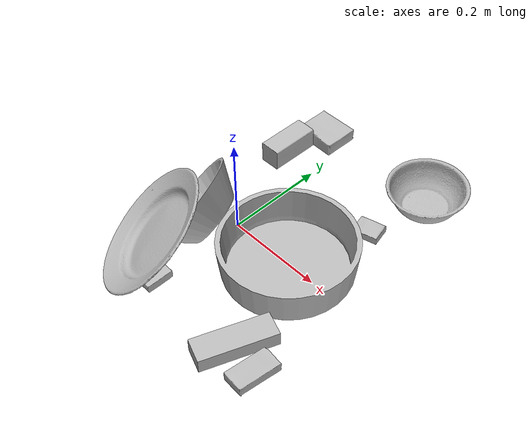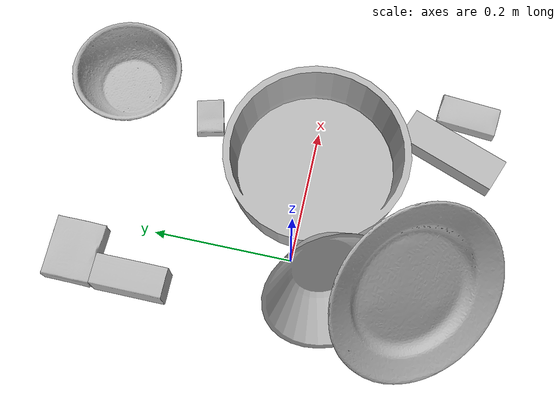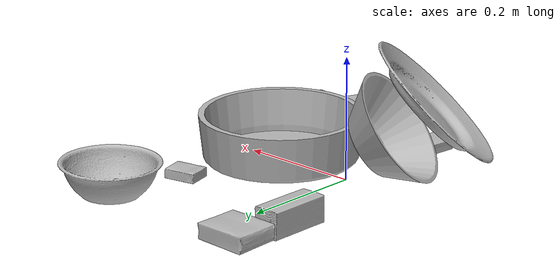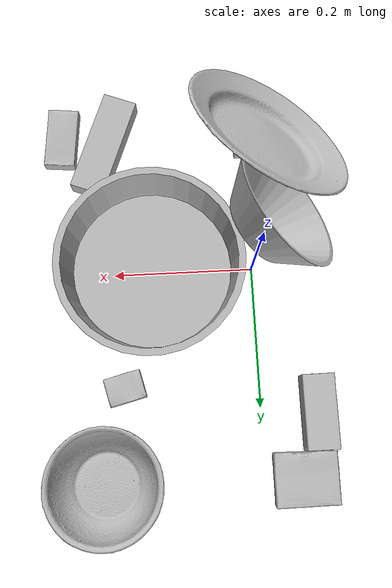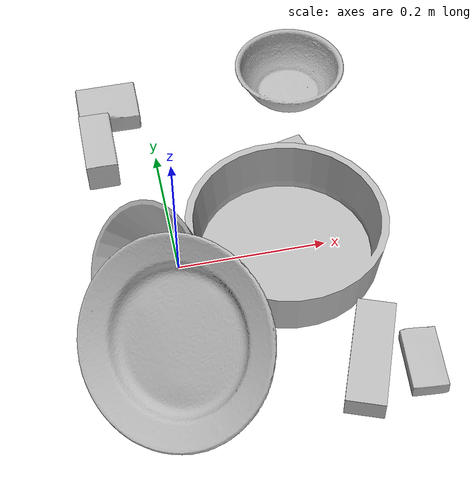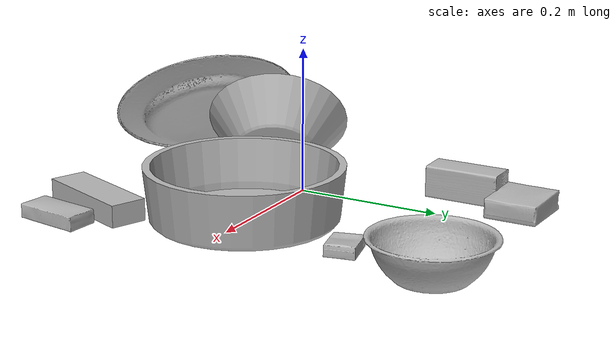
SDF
<sdf version="1.4">
  <world name="default">
    <light name="light1" type="point">
      <pose>0 0 1 0 0 0</pose>
      <diffuse>3 3 3 1</diffuse>
      <specular>3 3 3 1</specular>
    </light>
    <light name="light2" type="point">
      <pose>0 0.5 2 0 0 0</pose>
      <diffuse>1 1 1 1</diffuse>
      <specular>1 1 1 1</specular>
    </light>
    <light name="light3" type="point">
      <pose>0 0.5 2 0 0 0</pose>
      <diffuse>3 3 3 1</diffuse>
      <specular>3 3 3 1</specular>
    </light>
    <scene>
      <ambient>0.7 0.7 0.7</ambient>
    </scene>
    <model name="box1">
      <link name="link_box1">
        <collision name="default">
          <geometry>
            <mesh>
              <uri>model://jenga/collision_meshes/collision.obj</uri>
              <scale>1.0 1.0 1.0</scale>
            </mesh>
          </geometry>
          <surface>
            <friction>
              <ode>
                <mu>0.5</mu>
                <mu2>0.5</mu2>
              </ode>
            </friction>
          <contact>
        <ode>
            <max_vel>0</max_vel>
            <min_depth>0.0001</min_depth>
            <kp>1e8</kp>
        </ode>
    </contact></surface>
        </collision>
        <visual name="default">
          <geometry>
            <mesh>
              <uri>model://jenga/visual_meshes/visual.dae</uri>
              <scale>1.0 1.0 1.0</scale>
            </mesh>
          </geometry>
        </visual>
        <inertial>
          <mass>0.22956150770187378</mass>
          <pose>-2.502855807051674e-07 -0.00010250010382151231 -4.0923401684267446e-05 0.0 -7.34215461761844e-07 0.0</pose>
          <inertia>
            <ixx>6.3525236e-05</ixx>
            <iyy>0.00043044525</iyy>
            <izz>0.0004595369</izz>
            <ixy>0</ixy>
            <ixz>0</ixz>
            <iyz>0</iyz>
          </inertia>
        </inertial>
      </link>
      <pose>0.20788882672786713 -0.19574101269245148 0.014999995008111 -8.26164790568732e-09 9.737600849502162e-09 -1.9372807256814977</pose>
    </model>
    <model name="box11">
      <link name="link_box11">
        <collision name="default">
          <geometry>
            <mesh>
              <uri>model://gelatin_box/collision_meshes/collision.obj</uri>
              <scale>1.0 1.0 1.0</scale>
            </mesh>
          </geometry>
          <surface>
            <friction>
              <ode>
                <mu>0.5</mu>
                <mu2>0.5</mu2>
              </ode>
            </friction>
          <contact>
        <ode>
            <max_vel>0</max_vel>
            <min_depth>0.0001</min_depth>
            <kp>1e8</kp>
        </ode>
    </contact></surface>
        </collision>
        <visual name="default">
          <geometry>
            <mesh>
              <uri>model://gelatin_box/visual_meshes/visual.dae</uri>
              <scale>1.0 1.0 1.0</scale>
            </mesh>
          </geometry>
        </visual>
        <inertial>
          <mass>0.23979201912879944</mass>
          <pose>0.00043196187471039593 0.00011156872642459348 -0.0003640321083366871 -0.0010503717361155602 -0.00475581776093882 0.016440559470502904</pose>
          <inertia>
            <ixx>0.00016927361</ixx>
            <iyy>0.000120911245</iyy>
            <izz>0.00025767216</izz>
            <ixy>0</ixy>
            <ixz>0</ixz>
            <iyz>0</iyz>
          </inertia>
        </inertial>
      </link>
      <pose>-0.05483310669660568 0.299321711063385 0.015168314799666405 0.005597137635525349 -0.0073041506323945436 -1.583892960916431</pose>
    </model>
    <model name="box2">
      <link name="link_box2">
        <collision name="default">
          <geometry>
            <mesh>
              <uri>model://wood_block/collision_meshes/collision.obj</uri>
              <scale>0.5 0.5 0.5</scale>
            </mesh>
          </geometry>
          <surface>
            <friction>
              <ode>
                <mu>0.5</mu>
                <mu2>0.5</mu2>
              </ode>
            </friction>
          <contact>
        <ode>
            <max_vel>0</max_vel>
            <min_depth>0.0001</min_depth>
            <kp>1e8</kp>
        </ode>
    </contact></surface>
        </collision>
        <visual name="default">
          <geometry>
            <mesh>
              <uri>model://wood_block/visual_meshes/visual.dae</uri>
              <scale>0.5 0.5 0.5</scale>
            </mesh>
          </geometry>
        </visual>
        <inertial>
          <mass>0.1620619148015976</mass>
          <pose>-2.9066577553749084e-06 -0.000285404734313488 0.00013204291462898254 -0.05221116986778199 -0.0051926948812571205 -0.006861377876233232</pose>
          <inertia>
            <ixx>5.421584e-05</ixx>
            <iyy>0.00017126785</iyy>
            <izz>0.00017062723</izz>
            <ixy>0</ixy>
            <ixz>0</ixz>
            <iyz>0</iyz>
          </inertia>
        </inertial>
      </link>
      <pose>-0.07807037979364395 0.21050408482551575 0.022629262879490852 -0.0052085043311238845 0.005718761721943353 1.571538389620823</pose>
    </model>
    <model name="box21">
      <link name="link_box21">
        <collision name="default">
          <geometry>
            <mesh>
              <uri>model://cracker_box/collision_meshes/collision.obj</uri>
              <scale>0.25 0.25 0.25</scale>
            </mesh>
          </geometry>
          <surface>
            <friction>
              <ode>
                <mu>0.5</mu>
                <mu2>0.5</mu2>
              </ode>
            </friction>
          <contact>
        <ode>
            <max_vel>0</max_vel>
            <min_depth>0.0001</min_depth>
            <kp>1e8</kp>
        </ode>
    </contact></surface>
        </collision>
        <visual name="default">
          <geometry>
            <mesh>
              <uri>model://cracker_box/visual_meshes/visual.dae</uri>
              <scale>0.25 0.25 0.25</scale>
            </mesh>
          </geometry>
        </visual>
        <inertial>
          <mass>0.053346797823905945</mass>
          <pose>0.0002366035187151283 6.358561950037256e-05 -0.00042573839891701937 -0.0003162075101960104 -0.011106487737771283 0.002546795233856971</pose>
          <inertia>
            <ixx>8.4806525e-06</ixx>
            <iyy>1.40032225e-05</iyy>
            <izz>1.9983887e-05</izz>
            <ixy>0</ixy>
            <ixz>0</ixz>
            <iyz>0</iyz>
          </inertia>
        </inertial>
      </link>
      <pose>0.18915365636348724 0.1641215831041336 0.009120451286435127 -0.011788081004932106 -0.0073671724162194295 0.24407822909145066</pose>
    </model>
    <model name="box3">
      <link name="link_box3">
        <collision name="default">
          <geometry>
            <mesh>
              <uri>model://pudding_box/collision_meshes/collision.obj</uri>
              <scale>0.5 0.5 0.5</scale>
            </mesh>
          </geometry>
          <surface>
            <friction>
              <ode>
                <mu>0.5</mu>
                <mu2>0.5</mu2>
              </ode>
            </friction>
          <contact>
        <ode>
            <max_vel>0</max_vel>
            <min_depth>0.0001</min_depth>
            <kp>1e8</kp>
        </ode>
    </contact></surface>
        </collision>
        <visual name="default">
          <geometry>
            <mesh>
              <uri>model://pudding_box/visual_meshes/visual.dae</uri>
              <scale>0.5 0.5 0.5</scale>
            </mesh>
          </geometry>
        </visual>
        <inertial>
          <mass>0.03981568291783333</mass>
          <pose>0.00024474109522998333 0.00040339428232982755 -0.00025944141088984907 0.005213101343760943 -0.0066037982384193495 0.020079821436446477</pose>
          <inertia>
            <ixx>1.1252395e-05</ixx>
            <iyy>7.5706907e-06</iyy>
            <izz>1.6617103e-05</izz>
            <ixy>0</ixy>
            <ixz>0</ixz>
            <iyz>0</iyz>
          </inertia>
        </inertial>
      </link>
      <pose>-0.007473637815564871 -0.19984082877635956 0.009862905368208885 0.022348432512009995 -0.01139176443116539 -0.036409072220451484</pose>
    </model>
    <model name="box31">
      <link name="link_box31">
        <collision name="default">
          <geometry>
            <mesh>
              <uri>model://sugar_box/collision_meshes/collision.obj</uri>
              <scale>0.5 0.5 0.5</scale>
            </mesh>
          </geometry>
          <surface>
            <friction>
              <ode>
                <mu>0.5</mu>
                <mu2>0.5</mu2>
              </ode>
            </friction>
          <contact>
        <ode>
            <max_vel>0</max_vel>
            <min_depth>0.0001</min_depth>
            <kp>1e8</kp>
        </ode>
    </contact></surface>
        </collision>
        <visual name="default">
          <geometry>
            <mesh>
              <uri>model://sugar_box/visual_meshes/visual.dae</uri>
              <scale>0.5 0.5 0.5</scale>
            </mesh>
          </geometry>
        </visual>
        <inertial>
          <mass>0.09878891706466675</mass>
          <pose>0.0005171863595023751 1.924554817378521e-05 -0.00018182402709499002 -0.0004046259508743568 0.001050663638168667 0.0026153790219137513</pose>
          <inertia>
            <ixx>2.0577656e-05</ixx>
            <iyy>6.651122e-05</iyy>
            <izz>7.9621874e-05</izz>
            <ixy>0</ixy>
            <ixz>0</ixz>
            <iyz>0</iyz>
          </inertia>
        </inertial>
      </link>
      <pose>0.2717330753803253 -0.21225449442863464 0.011399300768971443 0.0007751450218741434 -0.02343250619498253 -1.6721832834761328</pose>
    </model>
    <model name="plate1">
      <link name="link_plate1">
        <collision name="default">
          <geometry>
            <mesh>
              <uri>model://pan_tefal/collision_meshes/collision.obj</uri>
              <scale>1.0 1.0 1.0</scale>
            </mesh>
          </geometry>
          <surface>
            <friction>
              <ode>
                <mu>0.5</mu>
                <mu2>0.5</mu2>
              </ode>
            </friction>
          <contact>
        <ode>
            <max_vel>0</max_vel>
            <min_depth>0.0001</min_depth>
            <kp>1e8</kp>
        </ode>
    </contact></surface>
        </collision>
        <visual name="default">
          <geometry>
            <mesh>
              <uri>model://pan_tefal/visual_meshes/visual.dae</uri>
              <scale>1.0 1.0 1.0</scale>
            </mesh>
          </geometry>
        </visual>
        <inertial>
          <mass>1.1273940801620483</mass>
          <pose>-0.00018001534044742584 3.279306838521734e-05 -0.00851493701338768 0.0008190361817388816 -0.00033014848142065665 -0.3318599615030245</pose>
          <inertia>
            <ixx>0.007782347</ixx>
            <iyy>0.00783252</iyy>
            <izz>0.014325799</izz>
            <ixy>0</ixy>
            <ixz>0</ixz>
            <iyz>0</iyz>
          </inertia>
        </inertial>
      </link>
      <pose>0.14441817998886108 -0.005547397304326296 0.03805001080036163 1.5845776586396238e-07 7.916780450140395e-07 0.4183748701406475</pose>
    </model>
    <model name="bowl1">
      <link name="link_bowl1">
        <collision name="default">
          <geometry>
            <mesh>
              <uri>model://bowl_a/collision_meshes/collision.obj</uri>
              <scale>1.0 1.0 1.0</scale>
            </mesh>
          </geometry>
          <surface>
            <friction>
              <ode>
                <mu>0.5</mu>
                <mu2>0.5</mu2>
              </ode>
            </friction>
          <contact>
        <ode>
            <max_vel>0</max_vel>
            <min_depth>0.0001</min_depth>
            <kp>1e8</kp>
        </ode>
    </contact></surface>
        </collision>
        <visual name="default">
          <geometry>
            <mesh>
              <uri>model://bowl_a/visual_meshes/visual.dae</uri>
              <scale>1.0 1.0 1.0</scale>
            </mesh>
          </geometry>
        </visual>
        <inertial>
          <mass>0.3873887062072754</mass>
          <pose>0.00027867493918165565 4.731054286821745e-05 -0.0013765293406322598 -0.0009805472575270138 -0.0010938146264646796 -0.19122952428204854</pose>
          <inertia>
            <ixx>0.0011029133</ixx>
            <iyy>0.0011096848</iyy>
            <izz>0.001961574</izz>
            <ixy>0</ixy>
            <ixz>0</ixz>
            <iyz>0</iyz>
          </inertia>
        </inertial>
      </link>
      <pose>-0.028845207765698433 -0.058659877628088 0.0635930597782135 -0.9202229669670206 0.30415661733780996 2.2458594989736933</pose>
    </model>
    <model name="plate2">
      <link name="link_plate2">
        <collision name="default">
          <geometry>
            <mesh>
              <uri>model://plate/collision_meshes/collision.obj</uri>
              <scale>1.0 1.0 1.0</scale>
            </mesh>
          </geometry>
          <surface>
            <friction>
              <ode>
                <mu>0.5</mu>
                <mu2>0.5</mu2>
              </ode>
            </friction>
          <contact>
        <ode>
            <max_vel>0</max_vel>
            <min_depth>0.0001</min_depth>
            <kp>1e8</kp>
        </ode>
    </contact></surface>
        </collision>
        <visual name="default">
          <geometry>
            <mesh>
              <uri>model://plate/visual_meshes/visual.dae</uri>
              <scale>1.0 1.0 1.0</scale>
            </mesh>
          </geometry>
        </visual>
        <inertial>
          <mass>0.13866961002349854</mass>
          <pose>-0.0006044620531611145 0.0002782586379908025 -0.0010561972158029675 0.0022187857877866432 -0.0032254843385796767 0.452609315183835</pose>
          <inertia>
            <ixx>0.0006486992</ixx>
            <iyy>0.0006424946</iyy>
            <izz>0.0012687586</izz>
            <ixy>0</ixy>
            <ixz>0</ixz>
            <iyz>0</iyz>
          </inertia>
        </inertial>
      </link>
      <pose>-0.028029825538396835 -0.17171640694141388 0.0858197882771492 0.5834237979117158 0.5535628034823875 -1.4722963717891995</pose>
    </model>
    <model name="bowl2">
      <link name="link_bowl2">
        <collision name="default">
          <geometry>
            <mesh>
              <uri>model://bowl/collision_meshes/collision.obj</uri>
              <scale>1.0 1.0 1.0</scale>
            </mesh>
          </geometry>
          <surface>
            <friction>
              <ode>
                <mu>0.5</mu>
                <mu2>0.5</mu2>
              </ode>
            </friction>
          <contact>
        <ode>
            <max_vel>0</max_vel>
            <min_depth>0.0001</min_depth>
            <kp>1e8</kp>
        </ode>
    </contact></surface>
        </collision>
        <visual name="default">
          <geometry>
            <mesh>
              <uri>model://bowl/visual_meshes/visual.dae</uri>
              <scale>1.0 1.0 1.0</scale>
            </mesh>
          </geometry>
        </visual>
        <inertial>
          <mass>0.04854629561305046</mass>
          <pose>0.00020445325935725123 -0.0010302069131284952 -0.0008042645058594644 -0.015764106240563104 0.014546770392749554 0.7140394241749954</pose>
          <inertia>
            <ixx>0.00011151466</ixx>
            <iyy>0.00010902299</iyy>
            <izz>0.00018760598</izz>
            <ixy>0</ixy>
            <ixz>0</ixz>
            <iyz>0</iyz>
          </inertia>
        </inertial>
      </link>
      <pose>0.21862831711769104 0.2950209677219391 0.027779996395111084 7.540510404586863e-08 2.7257224231336982e-08 2.5408235834881463</pose>
    </model>
  <physics type="ode">
      <max_contacts>50</max_contacts>
      <ode>
        <solver>
          <type>quick</type>
          <iters>75</iters>
        </solver>
        <constraints>
          <contact_max_correcting_vel>0</contact_max_correcting_vel>
          <contact_surface_layer>0</contact_surface_layer>
        </constraints>
      </ode>
    </physics></world>
</sdf>
